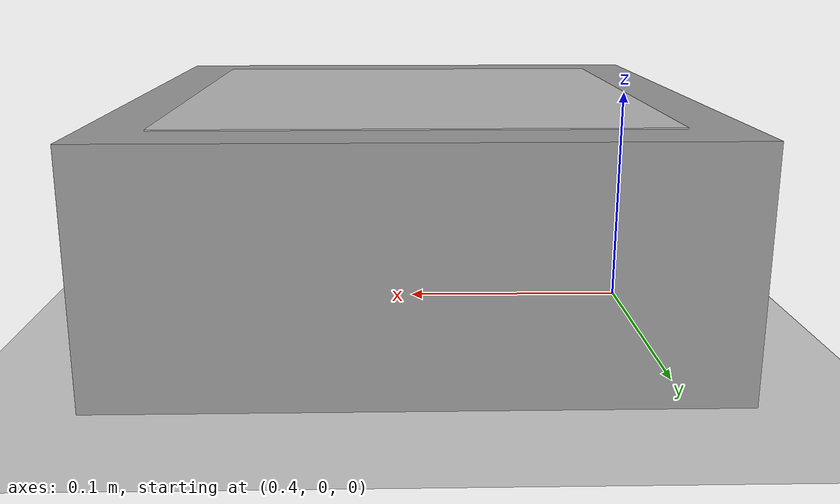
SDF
<?xml version="1.0" ?>
<sdf version="1.6">
   <world name="default">
      <include>
         <uri>model://ground_plane</uri>
      </include>
      <include>
         <uri>model://sun</uri>
      </include>
      <include>
         <uri>model://qr_simple</uri>
         <pose> 0.5 0 0 0 0 -1.57</pose>
      </include>

   </world>
</sdf>

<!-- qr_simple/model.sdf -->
<sdf version="1.5">
    <model name="qr_simple">
        <static>true</static>
        <link name="qr_simple_link">
            <pose>0 0 0.1 0 0 1.5707963267948966</pose>
            <visual name="visual_qr_simple">
                <cast_shadows>false</cast_shadows>
                <geometry><box><size>0.2 0.2 1e-3</size></box></geometry>
                <material>
                    <script>
                        <uri>model://qr_simple/materials/scripts</uri>
                        <uri>model://qr_simple/materials/textures</uri>
                        <name>qr_simple/qr_simple</name>
                    </script>
                </material>
            </visual>
        </link>
        <link name="cube_link">
            <visual name="cube_visual">
                <geometry>
                <box>
                    <size>0.25 0.25 0.1</size>
                </box>
                </geometry>
                <material>
                <script>
                    <uri>file://media/materials/scripts/gazebo.material</uri>
                    <name>Gazebo/Grey</name>
                </script>
                </material>
                <pose>0 0 0.05 0 0 0</pose>
            </visual>
        </link>
            <!-- Create a fixed joint between the cube and the plane -->
        <joint name="fixed_joint" type="fixed">
            <parent>qr_simple_link</parent>
            <child>cube_link</child>

        </joint>
    </model>
</sdf>
